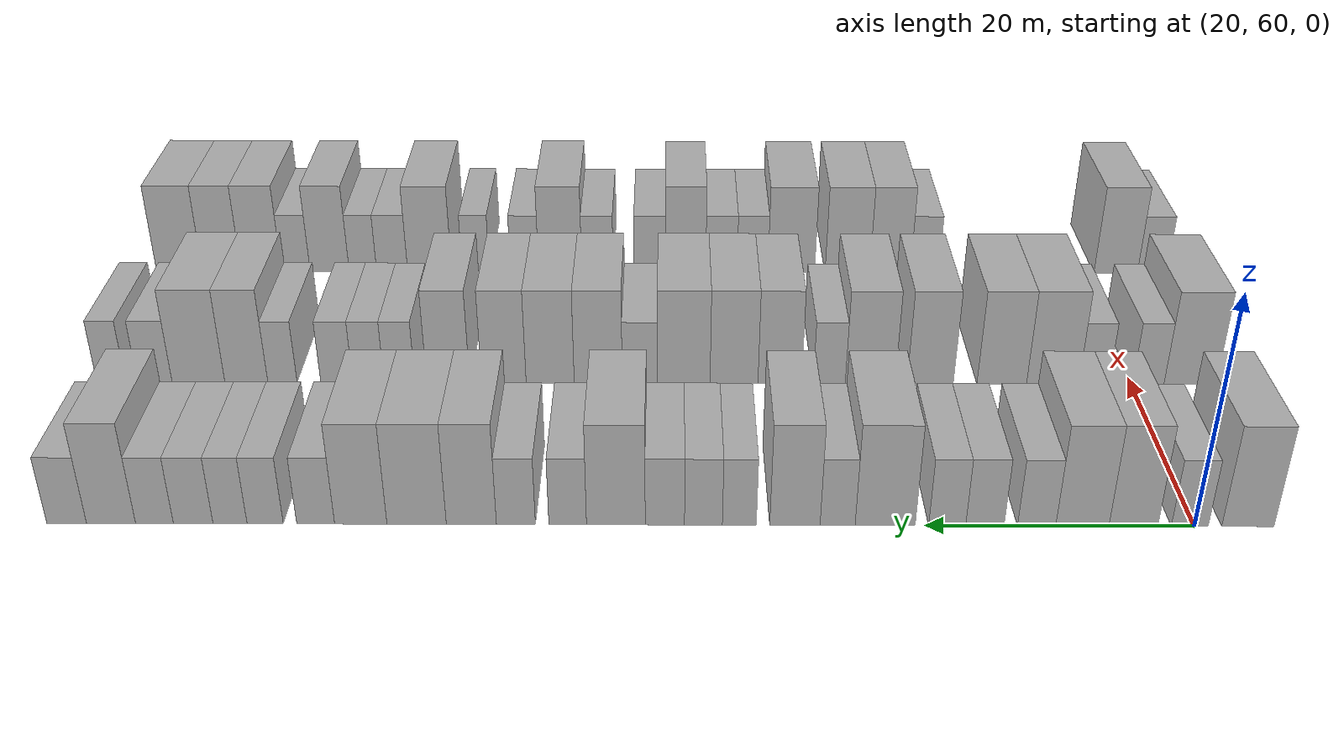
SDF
<sdf version="1.6">
 <world name="default">
  <model name="building_71">
   <static>1</static>
   <pose>25.0000 56.0857 0 0.000000 0.000000 0.000000</pose>
   <link name="link">
    <pose>0 0 4.50 0 0 0</pose>
    <collision name="collision"><geometry><box><size>10.0000 3.8599 9.0000</size></box></geometry></collision>
    <visual name="visual">
     <cast_shadows>0</cast_shadows>
     <geometry><box><size>10.0000 3.8599 9.0000</size></box></geometry>
     <material>
      <script>
       <uri>model://HANNAS_wall/materials/scripts</uri>
       <uri>model://HANNAS_wall/materials/textures</uri>
       <name>vrc/HANNAS_wall</name>
      </script>
     </material>
    </visual>
   </link>
  </model>
  <model name="building_72">
   <static>1</static>
   <pose>25.0000 60.3804 0 0.000000 0.000000 0.000000</pose>
   <link name="link">
    <pose>0 0 3.00 0 0 0</pose>
    <collision name="collision"><geometry><box><size>10.0000 2.7295 6.0000</size></box></geometry></collision>
    <visual name="visual">
     <cast_shadows>0</cast_shadows>
     <geometry><box><size>10.0000 2.7295 6.0000</size></box></geometry>
     <material>
      <script>
       <uri>model://HANNAS_wall/materials/scripts</uri>
       <uri>model://HANNAS_wall/materials/textures</uri>
       <name>vrc/HANNAS_wall</name>
      </script>
     </material>
    </visual>
   </link>
  </model>
  <model name="building_73">
   <static>1</static>
   <pose>25.0000 64.5520 0 0.000000 0.000000 0.000000</pose>
   <link name="link">
    <pose>0 0 4.50 0 0 0</pose>
    <collision name="collision"><geometry><box><size>10.0000 3.6137 9.0000</size></box></geometry></collision>
    <visual name="visual">
     <cast_shadows>0</cast_shadows>
     <geometry><box><size>10.0000 3.6137 9.0000</size></box></geometry>
     <material>
      <script>
       <uri>model://HANNAS_wall/materials/scripts</uri>
       <uri>model://HANNAS_wall/materials/textures</uri>
       <name>vrc/HANNAS_wall</name>
      </script>
     </material>
    </visual>
   </link>
  </model>
  <model name="building_74">
   <static>1</static>
   <pose>25.0000 68.3248 0 0.000000 0.000000 0.000000</pose>
   <link name="link">
    <pose>0 0 4.50 0 0 0</pose>
    <collision name="collision"><geometry><box><size>10.0000 3.9318 9.0000</size></box></geometry></collision>
    <visual name="visual">
     <cast_shadows>0</cast_shadows>
     <geometry><box><size>10.0000 3.9318 9.0000</size></box></geometry>
     <material>
      <script>
       <uri>model://HANNAS_wall/materials/scripts</uri>
       <uri>model://HANNAS_wall/materials/textures</uri>
       <name>vrc/HANNAS_wall</name>
      </script>
     </material>
    </visual>
   </link>
  </model>
  <model name="building_75">
   <static>1</static>
   <pose>25.0000 71.7041 0 0.000000 0.000000 0.000000</pose>
   <link name="link">
    <pose>0 0 3.00 0 0 0</pose>
    <collision name="collision"><geometry><box><size>10.0000 2.8268 6.0000</size></box></geometry></collision>
    <visual name="visual">
     <cast_shadows>0</cast_shadows>
     <geometry><box><size>10.0000 2.8268 6.0000</size></box></geometry>
     <material>
      <script>
       <uri>model://HANNAS_wall/materials/scripts</uri>
       <uri>model://HANNAS_wall/materials/textures</uri>
       <name>vrc/HANNAS_wall</name>
      </script>
     </material>
    </visual>
   </link>
  </model>
  <model name="building_76">
   <static>1</static>
   <pose>25.0000 75.5362 0 0.000000 0.000000 0.000000</pose>
   <link name="link">
    <pose>0 0 3.00 0 0 0</pose>
    <collision name="collision"><geometry><box><size>10.0000 2.8375 6.0000</size></box></geometry></collision>
    <visual name="visual">
     <cast_shadows>0</cast_shadows>
     <geometry><box><size>10.0000 2.8375 6.0000</size></box></geometry>
     <material>
      <script>
       <uri>model://HANNAS_wall/materials/scripts</uri>
       <uri>model://HANNAS_wall/materials/textures</uri>
       <name>vrc/HANNAS_wall</name>
      </script>
     </material>
    </visual>
   </link>
  </model>
  <model name="building_77">
   <static>1</static>
   <pose>25.0000 78.3225 0 0.000000 0.000000 0.000000</pose>
   <link name="link">
    <pose>0 0 3.00 0 0 0</pose>
    <collision name="collision"><geometry><box><size>10.0000 2.7351 6.0000</size></box></geometry></collision>
    <visual name="visual">
     <cast_shadows>0</cast_shadows>
     <geometry><box><size>10.0000 2.7351 6.0000</size></box></geometry>
     <material>
      <script>
       <uri>model://HANNAS_wall/materials/scripts</uri>
       <uri>model://HANNAS_wall/materials/textures</uri>
       <name>vrc/HANNAS_wall</name>
      </script>
     </material>
    </visual>
   </link>
  </model>
  <model name="building_78">
   <static>1</static>
   <pose>25.0000 82.9114 0 0.000000 0.000000 0.000000</pose>
   <link name="link">
    <pose>0 0 4.50 0 0 0</pose>
    <collision name="collision"><geometry><box><size>10.0000 4.4426 9.0000</size></box></geometry></collision>
    <visual name="visual">
     <cast_shadows>0</cast_shadows>
     <geometry><box><size>10.0000 4.4426 9.0000</size></box></geometry>
     <material>
      <script>
       <uri>model://HANNAS_wall/materials/scripts</uri>
       <uri>model://HANNAS_wall/materials/textures</uri>
       <name>vrc/HANNAS_wall</name>
      </script>
     </material>
    </visual>
   </link>
  </model>
  <model name="building_79">
   <static>1</static>
   <pose>25.0000 86.4302 0 0.000000 0.000000 0.000000</pose>
   <link name="link">
    <pose>0 0 3.00 0 0 0</pose>
    <collision name="collision"><geometry><box><size>10.0000 2.5951 6.0000</size></box></geometry></collision>
    <visual name="visual">
     <cast_shadows>0</cast_shadows>
     <geometry><box><size>10.0000 2.5951 6.0000</size></box></geometry>
     <material>
      <script>
       <uri>model://HANNAS_wall/materials/scripts</uri>
       <uri>model://HANNAS_wall/materials/textures</uri>
       <name>vrc/HANNAS_wall</name>
      </script>
     </material>
    </visual>
   </link>
  </model>
  <model name="building_80">
   <static>1</static>
   <pose>25.0000 89.5902 0 0.000000 0.000000 0.000000</pose>
   <link name="link">
    <pose>0 0 4.50 0 0 0</pose>
    <collision name="collision"><geometry><box><size>10.0000 3.7249 9.0000</size></box></geometry></collision>
    <visual name="visual">
     <cast_shadows>0</cast_shadows>
     <geometry><box><size>10.0000 3.7249 9.0000</size></box></geometry>
     <material>
      <script>
       <uri>model://HANNAS_wall/materials/scripts</uri>
       <uri>model://HANNAS_wall/materials/textures</uri>
       <name>vrc/HANNAS_wall</name>
      </script>
     </material>
    </visual>
   </link>
  </model>
  <model name="building_81">
   <static>1</static>
   <pose>25.0000 93.7089 0 0.000000 0.000000 0.000000</pose>
   <link name="link">
    <pose>0 0 3.00 0 0 0</pose>
    <collision name="collision"><geometry><box><size>10.0000 2.5125 6.0000</size></box></geometry></collision>
    <visual name="visual">
     <cast_shadows>0</cast_shadows>
     <geometry><box><size>10.0000 2.5125 6.0000</size></box></geometry>
     <material>
      <script>
       <uri>model://HANNAS_wall/materials/scripts</uri>
       <uri>model://HANNAS_wall/materials/textures</uri>
       <name>vrc/HANNAS_wall</name>
      </script>
     </material>
    </visual>
   </link>
  </model>
  <model name="building_82">
   <static>1</static>
   <pose>25.0000 96.3669 0 0.000000 0.000000 0.000000</pose>
   <link name="link">
    <pose>0 0 3.00 0 0 0</pose>
    <collision name="collision"><geometry><box><size>10.0000 2.8036 6.0000</size></box></geometry></collision>
    <visual name="visual">
     <cast_shadows>0</cast_shadows>
     <geometry><box><size>10.0000 2.8036 6.0000</size></box></geometry>
     <material>
      <script>
       <uri>model://HANNAS_wall/materials/scripts</uri>
       <uri>model://HANNAS_wall/materials/textures</uri>
       <name>vrc/HANNAS_wall</name>
      </script>
     </material>
    </visual>
   </link>
  </model>
  <model name="building_83">
   <static>1</static>
   <pose>25.0000 99.2216 0 0.000000 0.000000 0.000000</pose>
   <link name="link">
    <pose>0 0 3.00 0 0 0</pose>
    <collision name="collision"><geometry><box><size>10.0000 2.9058 6.0000</size></box></geometry></collision>
    <visual name="visual">
     <cast_shadows>0</cast_shadows>
     <geometry><box><size>10.0000 2.9058 6.0000</size></box></geometry>
     <material>
      <script>
       <uri>model://HANNAS_wall/materials/scripts</uri>
       <uri>model://HANNAS_wall/materials/textures</uri>
       <name>vrc/HANNAS_wall</name>
      </script>
     </material>
    </visual>
   </link>
  </model>
  <model name="building_84">
   <static>1</static>
   <pose>25.0000 102.8513 0 0.000000 0.000000 0.000000</pose>
   <link name="link">
    <pose>0 0 4.50 0 0 0</pose>
    <collision name="collision"><geometry><box><size>10.0000 4.3535 9.0000</size></box></geometry></collision>
    <visual name="visual">
     <cast_shadows>0</cast_shadows>
     <geometry><box><size>10.0000 4.3535 9.0000</size></box></geometry>
     <material>
      <script>
       <uri>model://HANNAS_wall/materials/scripts</uri>
       <uri>model://HANNAS_wall/materials/textures</uri>
       <name>vrc/HANNAS_wall</name>
      </script>
     </material>
    </visual>
   </link>
  </model>
  <model name="building_85">
   <static>1</static>
   <pose>25.0000 106.4211 0 0.000000 0.000000 0.000000</pose>
   <link name="link">
    <pose>0 0 3.00 0 0 0</pose>
    <collision name="collision"><geometry><box><size>10.0000 2.7861 6.0000</size></box></geometry></collision>
    <visual name="visual">
     <cast_shadows>0</cast_shadows>
     <geometry><box><size>10.0000 2.7861 6.0000</size></box></geometry>
     <material>
      <script>
       <uri>model://HANNAS_wall/materials/scripts</uri>
       <uri>model://HANNAS_wall/materials/textures</uri>
       <name>vrc/HANNAS_wall</name>
      </script>
     </material>
    </visual>
   </link>
  </model>
  <model name="building_86">
   <static>1</static>
   <pose>25.0000 110.2580 0 0.000000 0.000000 0.000000</pose>
   <link name="link">
    <pose>0 0 3.00 0 0 0</pose>
    <collision name="collision"><geometry><box><size>10.0000 2.8877 6.0000</size></box></geometry></collision>
    <visual name="visual">
     <cast_shadows>0</cast_shadows>
     <geometry><box><size>10.0000 2.8877 6.0000</size></box></geometry>
     <material>
      <script>
       <uri>model://HANNAS_wall/materials/scripts</uri>
       <uri>model://HANNAS_wall/materials/textures</uri>
       <name>vrc/HANNAS_wall</name>
      </script>
     </material>
    </visual>
   </link>
  </model>
  <model name="building_87">
   <static>1</static>
   <pose>25.0000 113.5597 0 0.000000 0.000000 0.000000</pose>
   <link name="link">
    <pose>0 0 4.50 0 0 0</pose>
    <collision name="collision"><geometry><box><size>10.0000 3.7157 9.0000</size></box></geometry></collision>
    <visual name="visual">
     <cast_shadows>0</cast_shadows>
     <geometry><box><size>10.0000 3.7157 9.0000</size></box></geometry>
     <material>
      <script>
       <uri>model://HANNAS_wall/materials/scripts</uri>
       <uri>model://HANNAS_wall/materials/textures</uri>
       <name>vrc/HANNAS_wall</name>
      </script>
     </material>
    </visual>
   </link>
  </model>
  <model name="building_88">
   <static>1</static>
   <pose>25.0000 117.6189 0 0.000000 0.000000 0.000000</pose>
   <link name="link">
    <pose>0 0 4.50 0 0 0</pose>
    <collision name="collision"><geometry><box><size>10.0000 4.4026 9.0000</size></box></geometry></collision>
    <visual name="visual">
     <cast_shadows>0</cast_shadows>
     <geometry><box><size>10.0000 4.4026 9.0000</size></box></geometry>
     <material>
      <script>
       <uri>model://HANNAS_wall/materials/scripts</uri>
       <uri>model://HANNAS_wall/materials/textures</uri>
       <name>vrc/HANNAS_wall</name>
      </script>
     </material>
    </visual>
   </link>
  </model>
  <model name="building_89">
   <static>1</static>
   <pose>25.0000 121.7616 0 0.000000 0.000000 0.000000</pose>
   <link name="link">
    <pose>0 0 4.50 0 0 0</pose>
    <collision name="collision"><geometry><box><size>10.0000 3.8828 9.0000</size></box></geometry></collision>
    <visual name="visual">
     <cast_shadows>0</cast_shadows>
     <geometry><box><size>10.0000 3.8828 9.0000</size></box></geometry>
     <material>
      <script>
       <uri>model://HANNAS_wall/materials/scripts</uri>
       <uri>model://HANNAS_wall/materials/textures</uri>
       <name>vrc/HANNAS_wall</name>
      </script>
     </material>
    </visual>
   </link>
  </model>
  <model name="building_90">
   <static>1</static>
   <pose>25.0000 125.1081 0 0.000000 0.000000 0.000000</pose>
   <link name="link">
    <pose>0 0 3.00 0 0 0</pose>
    <collision name="collision"><geometry><box><size>10.0000 2.8102 6.0000</size></box></geometry></collision>
    <visual name="visual">
     <cast_shadows>0</cast_shadows>
     <geometry><box><size>10.0000 2.8102 6.0000</size></box></geometry>
     <material>
      <script>
       <uri>model://HANNAS_wall/materials/scripts</uri>
       <uri>model://HANNAS_wall/materials/textures</uri>
       <name>vrc/HANNAS_wall</name>
      </script>
     </material>
    </visual>
   </link>
  </model>
  <model name="building_91">
   <static>1</static>
   <pose>25.0000 128.8567 0 0.000000 0.000000 0.000000</pose>
   <link name="link">
    <pose>0 0 3.00 0 0 0</pose>
    <collision name="collision"><geometry><box><size>10.0000 2.6869 6.0000</size></box></geometry></collision>
    <visual name="visual">
     <cast_shadows>0</cast_shadows>
     <geometry><box><size>10.0000 2.6869 6.0000</size></box></geometry>
     <material>
      <script>
       <uri>model://HANNAS_wall/materials/scripts</uri>
       <uri>model://HANNAS_wall/materials/textures</uri>
       <name>vrc/HANNAS_wall</name>
      </script>
     </material>
    </visual>
   </link>
  </model>
  <model name="building_92">
   <static>1</static>
   <pose>25.0000 131.4658 0 0.000000 0.000000 0.000000</pose>
   <link name="link">
    <pose>0 0 3.00 0 0 0</pose>
    <collision name="collision"><geometry><box><size>10.0000 2.5313 6.0000</size></box></geometry></collision>
    <visual name="visual">
     <cast_shadows>0</cast_shadows>
     <geometry><box><size>10.0000 2.5313 6.0000</size></box></geometry>
     <material>
      <script>
       <uri>model://HANNAS_wall/materials/scripts</uri>
       <uri>model://HANNAS_wall/materials/textures</uri>
       <name>vrc/HANNAS_wall</name>
      </script>
     </material>
    </visual>
   </link>
  </model>
  <model name="building_93">
   <static>1</static>
   <pose>25.0000 134.2010 0 0.000000 0.000000 0.000000</pose>
   <link name="link">
    <pose>0 0 3.00 0 0 0</pose>
    <collision name="collision"><geometry><box><size>10.0000 2.9391 6.0000</size></box></geometry></collision>
    <visual name="visual">
     <cast_shadows>0</cast_shadows>
     <geometry><box><size>10.0000 2.9391 6.0000</size></box></geometry>
     <material>
      <script>
       <uri>model://HANNAS_wall/materials/scripts</uri>
       <uri>model://HANNAS_wall/materials/textures</uri>
       <name>vrc/HANNAS_wall</name>
      </script>
     </material>
    </visual>
   </link>
  </model>
  <model name="building_94">
   <static>1</static>
   <pose>25.0000 137.0754 0 0.000000 0.000000 0.000000</pose>
   <link name="link">
    <pose>0 0 3.00 0 0 0</pose>
    <collision name="collision"><geometry><box><size>10.0000 2.8098 6.0000</size></box></geometry></collision>
    <visual name="visual">
     <cast_shadows>0</cast_shadows>
     <geometry><box><size>10.0000 2.8098 6.0000</size></box></geometry>
     <material>
      <script>
       <uri>model://HANNAS_wall/materials/scripts</uri>
       <uri>model://HANNAS_wall/materials/textures</uri>
       <name>vrc/HANNAS_wall</name>
      </script>
     </material>
    </visual>
   </link>
  </model>
  <model name="building_95">
   <static>1</static>
   <pose>25.0000 140.3036 0 0.000000 0.000000 0.000000</pose>
   <link name="link">
    <pose>0 0 4.50 0 0 0</pose>
    <collision name="collision"><geometry><box><size>10.0000 3.6466 9.0000</size></box></geometry></collision>
    <visual name="visual">
     <cast_shadows>0</cast_shadows>
     <geometry><box><size>10.0000 3.6466 9.0000</size></box></geometry>
     <material>
      <script>
       <uri>model://HANNAS_wall/materials/scripts</uri>
       <uri>model://HANNAS_wall/materials/textures</uri>
       <name>vrc/HANNAS_wall</name>
      </script>
     </material>
    </visual>
   </link>
  </model>
  <model name="building_96">
   <static>1</static>
   <pose>25.0000 143.5985 0 0.000000 0.000000 0.000000</pose>
   <link name="link">
    <pose>0 0 3.00 0 0 0</pose>
    <collision name="collision"><geometry><box><size>10.0000 2.9433 6.0000</size></box></geometry></collision>
    <visual name="visual">
     <cast_shadows>0</cast_shadows>
     <geometry><box><size>10.0000 2.9433 6.0000</size></box></geometry>
     <material>
      <script>
       <uri>model://HANNAS_wall/materials/scripts</uri>
       <uri>model://HANNAS_wall/materials/textures</uri>
       <name>vrc/HANNAS_wall</name>
      </script>
     </material>
    </visual>
   </link>
  </model>
  <model name="building_194">
   <static>1</static>
   <pose>44.0000 55.0228 0 0.000000 0.000000 0.000000</pose>
   <link name="link">
    <pose>0 0 4.50 0 0 0</pose>
    <collision name="collision"><geometry><box><size>10.0000 4.4016 9.0000</size></box></geometry></collision>
    <visual name="visual">
     <cast_shadows>0</cast_shadows>
     <geometry><box><size>10.0000 4.4016 9.0000</size></box></geometry>
     <material>
      <script>
       <uri>model://HANNAS_wall/materials/scripts</uri>
       <uri>model://HANNAS_wall/materials/textures</uri>
       <name>vrc/HANNAS_wall</name>
      </script>
     </material>
    </visual>
   </link>
  </model>
  <model name="building_195">
   <static>1</static>
   <pose>44.0000 58.5445 0 0.000000 0.000000 0.000000</pose>
   <link name="link">
    <pose>0 0 3.00 0 0 0</pose>
    <collision name="collision"><geometry><box><size>10.0000 2.6420 6.0000</size></box></geometry></collision>
    <visual name="visual">
     <cast_shadows>0</cast_shadows>
     <geometry><box><size>10.0000 2.6420 6.0000</size></box></geometry>
     <material>
      <script>
       <uri>model://HANNAS_wall/materials/scripts</uri>
       <uri>model://HANNAS_wall/materials/textures</uri>
       <name>vrc/HANNAS_wall</name>
      </script>
     </material>
    </visual>
   </link>
  </model>
  <model name="building_196">
   <static>1</static>
   <pose>44.0000 63.1316 0 0.000000 0.000000 0.000000</pose>
   <link name="link">
    <pose>0 0 3.00 0 0 0</pose>
    <collision name="collision"><geometry><box><size>10.0000 2.5323 6.0000</size></box></geometry></collision>
    <visual name="visual">
     <cast_shadows>0</cast_shadows>
     <geometry><box><size>10.0000 2.5323 6.0000</size></box></geometry>
     <material>
      <script>
       <uri>model://HANNAS_wall/materials/scripts</uri>
       <uri>model://HANNAS_wall/materials/textures</uri>
       <name>vrc/HANNAS_wall</name>
      </script>
     </material>
    </visual>
   </link>
  </model>
  <model name="building_197">
   <static>1</static>
   <pose>44.0000 66.5945 0 0.000000 0.000000 0.000000</pose>
   <link name="link">
    <pose>0 0 4.50 0 0 0</pose>
    <collision name="collision"><geometry><box><size>10.0000 4.3934 9.0000</size></box></geometry></collision>
    <visual name="visual">
     <cast_shadows>0</cast_shadows>
     <geometry><box><size>10.0000 4.3934 9.0000</size></box></geometry>
     <material>
      <script>
       <uri>model://HANNAS_wall/materials/scripts</uri>
       <uri>model://HANNAS_wall/materials/textures</uri>
       <name>vrc/HANNAS_wall</name>
      </script>
     </material>
    </visual>
   </link>
  </model>
  <model name="building_198">
   <static>1</static>
   <pose>44.0000 70.8788 0 0.000000 0.000000 0.000000</pose>
   <link name="link">
    <pose>0 0 4.50 0 0 0</pose>
    <collision name="collision"><geometry><box><size>10.0000 4.1754 9.0000</size></box></geometry></collision>
    <visual name="visual">
     <cast_shadows>0</cast_shadows>
     <geometry><box><size>10.0000 4.1754 9.0000</size></box></geometry>
     <material>
      <script>
       <uri>model://HANNAS_wall/materials/scripts</uri>
       <uri>model://HANNAS_wall/materials/textures</uri>
       <name>vrc/HANNAS_wall</name>
      </script>
     </material>
    </visual>
   </link>
  </model>
  <model name="building_199">
   <static>1</static>
   <pose>44.0000 76.9136 0 0.000000 0.000000 0.000000</pose>
   <link name="link">
    <pose>0 0 4.50 0 0 0</pose>
    <collision name="collision"><geometry><box><size>10.0000 3.8942 9.0000</size></box></geometry></collision>
    <visual name="visual">
     <cast_shadows>0</cast_shadows>
     <geometry><box><size>10.0000 3.8942 9.0000</size></box></geometry>
     <material>
      <script>
       <uri>model://HANNAS_wall/materials/scripts</uri>
       <uri>model://HANNAS_wall/materials/textures</uri>
       <name>vrc/HANNAS_wall</name>
      </script>
     </material>
    </visual>
   </link>
  </model>
  <model name="building_200">
   <static>1</static>
   <pose>44.0000 81.9629 0 0.000000 0.000000 0.000000</pose>
   <link name="link">
    <pose>0 0 4.50 0 0 0</pose>
    <collision name="collision"><geometry><box><size>10.0000 4.2044 9.0000</size></box></geometry></collision>
    <visual name="visual">
     <cast_shadows>0</cast_shadows>
     <geometry><box><size>10.0000 4.2044 9.0000</size></box></geometry>
     <material>
      <script>
       <uri>model://HANNAS_wall/materials/scripts</uri>
       <uri>model://HANNAS_wall/materials/textures</uri>
       <name>vrc/HANNAS_wall</name>
      </script>
     </material>
    </visual>
   </link>
  </model>
  <model name="building_201">
   <static>1</static>
   <pose>44.0000 85.4098 0 0.000000 0.000000 0.000000</pose>
   <link name="link">
    <pose>0 0 3.00 0 0 0</pose>
    <collision name="collision"><geometry><box><size>10.0000 2.6894 6.0000</size></box></geometry></collision>
    <visual name="visual">
     <cast_shadows>0</cast_shadows>
     <geometry><box><size>10.0000 2.6894 6.0000</size></box></geometry>
     <material>
      <script>
       <uri>model://HANNAS_wall/materials/scripts</uri>
       <uri>model://HANNAS_wall/materials/textures</uri>
       <name>vrc/HANNAS_wall</name>
      </script>
     </material>
    </visual>
   </link>
  </model>
  <model name="building_202">
   <static>1</static>
   <pose>44.0000 89.5886 0 0.000000 0.000000 0.000000</pose>
   <link name="link">
    <pose>0 0 4.50 0 0 0</pose>
    <collision name="collision"><geometry><box><size>10.0000 3.6682 9.0000</size></box></geometry></collision>
    <visual name="visual">
     <cast_shadows>0</cast_shadows>
     <geometry><box><size>10.0000 3.6682 9.0000</size></box></geometry>
     <material>
      <script>
       <uri>model://HANNAS_wall/materials/scripts</uri>
       <uri>model://HANNAS_wall/materials/textures</uri>
       <name>vrc/HANNAS_wall</name>
      </script>
     </material>
    </visual>
   </link>
  </model>
  <model name="building_203">
   <static>1</static>
   <pose>44.0000 93.4413 0 0.000000 0.000000 0.000000</pose>
   <link name="link">
    <pose>0 0 4.50 0 0 0</pose>
    <collision name="collision"><geometry><box><size>10.0000 4.0372 9.0000</size></box></geometry></collision>
    <visual name="visual">
     <cast_shadows>0</cast_shadows>
     <geometry><box><size>10.0000 4.0372 9.0000</size></box></geometry>
     <material>
      <script>
       <uri>model://HANNAS_wall/materials/scripts</uri>
       <uri>model://HANNAS_wall/materials/textures</uri>
       <name>vrc/HANNAS_wall</name>
      </script>
     </material>
    </visual>
   </link>
  </model>
  <model name="building_204">
   <static>1</static>
   <pose>44.0000 97.6780 0 0.000000 0.000000 0.000000</pose>
   <link name="link">
    <pose>0 0 4.50 0 0 0</pose>
    <collision name="collision"><geometry><box><size>10.0000 4.4361 9.0000</size></box></geometry></collision>
    <visual name="visual">
     <cast_shadows>0</cast_shadows>
     <geometry><box><size>10.0000 4.4361 9.0000</size></box></geometry>
     <material>
      <script>
       <uri>model://HANNAS_wall/materials/scripts</uri>
       <uri>model://HANNAS_wall/materials/textures</uri>
       <name>vrc/HANNAS_wall</name>
      </script>
     </material>
    </visual>
   </link>
  </model>
  <model name="building_205">
   <static>1</static>
   <pose>44.0000 101.3795 0 0.000000 0.000000 0.000000</pose>
   <link name="link">
    <pose>0 0 3.00 0 0 0</pose>
    <collision name="collision"><geometry><box><size>10.0000 2.9668 6.0000</size></box></geometry></collision>
    <visual name="visual">
     <cast_shadows>0</cast_shadows>
     <geometry><box><size>10.0000 2.9668 6.0000</size></box></geometry>
     <material>
      <script>
       <uri>model://HANNAS_wall/materials/scripts</uri>
       <uri>model://HANNAS_wall/materials/textures</uri>
       <name>vrc/HANNAS_wall</name>
      </script>
     </material>
    </visual>
   </link>
  </model>
  <model name="building_206">
   <static>1</static>
   <pose>44.0000 104.8877 0 0.000000 0.000000 0.000000</pose>
   <link name="link">
    <pose>0 0 4.50 0 0 0</pose>
    <collision name="collision"><geometry><box><size>10.0000 4.0497 9.0000</size></box></geometry></collision>
    <visual name="visual">
     <cast_shadows>0</cast_shadows>
     <geometry><box><size>10.0000 4.0497 9.0000</size></box></geometry>
     <material>
      <script>
       <uri>model://HANNAS_wall/materials/scripts</uri>
       <uri>model://HANNAS_wall/materials/textures</uri>
       <name>vrc/HANNAS_wall</name>
      </script>
     </material>
    </visual>
   </link>
  </model>
  <model name="building_207">
   <static>1</static>
   <pose>44.0000 108.9412 0 0.000000 0.000000 0.000000</pose>
   <link name="link">
    <pose>0 0 4.50 0 0 0</pose>
    <collision name="collision"><geometry><box><size>10.0000 4.0572 9.0000</size></box></geometry></collision>
    <visual name="visual">
     <cast_shadows>0</cast_shadows>
     <geometry><box><size>10.0000 4.0572 9.0000</size></box></geometry>
     <material>
      <script>
       <uri>model://HANNAS_wall/materials/scripts</uri>
       <uri>model://HANNAS_wall/materials/textures</uri>
       <name>vrc/HANNAS_wall</name>
      </script>
     </material>
    </visual>
   </link>
  </model>
  <model name="building_208">
   <static>1</static>
   <pose>44.0000 112.8501 0 0.000000 0.000000 0.000000</pose>
   <link name="link">
    <pose>0 0 4.50 0 0 0</pose>
    <collision name="collision"><geometry><box><size>10.0000 3.7606 9.0000</size></box></geometry></collision>
    <visual name="visual">
     <cast_shadows>0</cast_shadows>
     <geometry><box><size>10.0000 3.7606 9.0000</size></box></geometry>
     <material>
      <script>
       <uri>model://HANNAS_wall/materials/scripts</uri>
       <uri>model://HANNAS_wall/materials/textures</uri>
       <name>vrc/HANNAS_wall</name>
      </script>
     </material>
    </visual>
   </link>
  </model>
  <model name="building_209">
   <static>1</static>
   <pose>44.0000 117.5459 0 0.000000 0.000000 0.000000</pose>
   <link name="link">
    <pose>0 0 4.50 0 0 0</pose>
    <collision name="collision"><geometry><box><size>10.0000 3.6310 9.0000</size></box></geometry></collision>
    <visual name="visual">
     <cast_shadows>0</cast_shadows>
     <geometry><box><size>10.0000 3.6310 9.0000</size></box></geometry>
     <material>
      <script>
       <uri>model://HANNAS_wall/materials/scripts</uri>
       <uri>model://HANNAS_wall/materials/textures</uri>
       <name>vrc/HANNAS_wall</name>
      </script>
     </material>
    </visual>
   </link>
  </model>
  <model name="building_210">
   <static>1</static>
   <pose>44.0000 121.6631 0 0.000000 0.000000 0.000000</pose>
   <link name="link">
    <pose>0 0 3.00 0 0 0</pose>
    <collision name="collision"><geometry><box><size>10.0000 2.6033 6.0000</size></box></geometry></collision>
    <visual name="visual">
     <cast_shadows>0</cast_shadows>
     <geometry><box><size>10.0000 2.6033 6.0000</size></box></geometry>
     <material>
      <script>
       <uri>model://HANNAS_wall/materials/scripts</uri>
       <uri>model://HANNAS_wall/materials/textures</uri>
       <name>vrc/HANNAS_wall</name>
      </script>
     </material>
    </visual>
   </link>
  </model>
  <model name="building_211">
   <static>1</static>
   <pose>44.0000 124.2877 0 0.000000 0.000000 0.000000</pose>
   <link name="link">
    <pose>0 0 3.00 0 0 0</pose>
    <collision name="collision"><geometry><box><size>10.0000 2.6461 6.0000</size></box></geometry></collision>
    <visual name="visual">
     <cast_shadows>0</cast_shadows>
     <geometry><box><size>10.0000 2.6461 6.0000</size></box></geometry>
     <material>
      <script>
       <uri>model://HANNAS_wall/materials/scripts</uri>
       <uri>model://HANNAS_wall/materials/textures</uri>
       <name>vrc/HANNAS_wall</name>
      </script>
     </material>
    </visual>
   </link>
  </model>
  <model name="building_212">
   <static>1</static>
   <pose>44.0000 126.9607 0 0.000000 0.000000 0.000000</pose>
   <link name="link">
    <pose>0 0 3.00 0 0 0</pose>
    <collision name="collision"><geometry><box><size>10.0000 2.6997 6.0000</size></box></geometry></collision>
    <visual name="visual">
     <cast_shadows>0</cast_shadows>
     <geometry><box><size>10.0000 2.6997 6.0000</size></box></geometry>
     <material>
      <script>
       <uri>model://HANNAS_wall/materials/scripts</uri>
       <uri>model://HANNAS_wall/materials/textures</uri>
       <name>vrc/HANNAS_wall</name>
      </script>
     </material>
    </visual>
   </link>
  </model>
  <model name="building_213">
   <static>1</static>
   <pose>44.0000 131.5496 0 0.000000 0.000000 0.000000</pose>
   <link name="link">
    <pose>0 0 3.00 0 0 0</pose>
    <collision name="collision"><geometry><box><size>10.0000 2.4781 6.0000</size></box></geometry></collision>
    <visual name="visual">
     <cast_shadows>0</cast_shadows>
     <geometry><box><size>10.0000 2.4781 6.0000</size></box></geometry>
     <material>
      <script>
       <uri>model://HANNAS_wall/materials/scripts</uri>
       <uri>model://HANNAS_wall/materials/textures</uri>
       <name>vrc/HANNAS_wall</name>
      </script>
     </material>
    </visual>
   </link>
  </model>
  <model name="building_214">
   <static>1</static>
   <pose>44.0000 134.6041 0 0.000000 0.000000 0.000000</pose>
   <link name="link">
    <pose>0 0 4.50 0 0 0</pose>
    <collision name="collision"><geometry><box><size>10.0000 3.6309 9.0000</size></box></geometry></collision>
    <visual name="visual">
     <cast_shadows>0</cast_shadows>
     <geometry><box><size>10.0000 3.6309 9.0000</size></box></geometry>
     <material>
      <script>
       <uri>model://HANNAS_wall/materials/scripts</uri>
       <uri>model://HANNAS_wall/materials/textures</uri>
       <name>vrc/HANNAS_wall</name>
      </script>
     </material>
    </visual>
   </link>
  </model>
  <model name="building_215">
   <static>1</static>
   <pose>44.0000 138.6508 0 0.000000 0.000000 0.000000</pose>
   <link name="link">
    <pose>0 0 4.50 0 0 0</pose>
    <collision name="collision"><geometry><box><size>10.0000 4.4624 9.0000</size></box></geometry></collision>
    <visual name="visual">
     <cast_shadows>0</cast_shadows>
     <geometry><box><size>10.0000 4.4624 9.0000</size></box></geometry>
     <material>
      <script>
       <uri>model://HANNAS_wall/materials/scripts</uri>
       <uri>model://HANNAS_wall/materials/textures</uri>
       <name>vrc/HANNAS_wall</name>
      </script>
     </material>
    </visual>
   </link>
  </model>
  <model name="building_216">
   <static>1</static>
   <pose>44.0000 142.3465 0 0.000000 0.000000 0.000000</pose>
   <link name="link">
    <pose>0 0 3.00 0 0 0</pose>
    <collision name="collision"><geometry><box><size>10.0000 2.9290 6.0000</size></box></geometry></collision>
    <visual name="visual">
     <cast_shadows>0</cast_shadows>
     <geometry><box><size>10.0000 2.9290 6.0000</size></box></geometry>
     <material>
      <script>
       <uri>model://HANNAS_wall/materials/scripts</uri>
       <uri>model://HANNAS_wall/materials/textures</uri>
       <name>vrc/HANNAS_wall</name>
      </script>
     </material>
    </visual>
   </link>
  </model>
  <model name="building_217">
   <static>1</static>
   <pose>44.0000 146.0322 0 0.000000 0.000000 0.000000</pose>
   <link name="link">
    <pose>0 0 3.00 0 0 0</pose>
    <collision name="collision"><geometry><box><size>10.0000 2.4426 6.0000</size></box></geometry></collision>
    <visual name="visual">
     <cast_shadows>0</cast_shadows>
     <geometry><box><size>10.0000 2.4426 6.0000</size></box></geometry>
     <material>
      <script>
       <uri>model://HANNAS_wall/materials/scripts</uri>
       <uri>model://HANNAS_wall/materials/textures</uri>
       <name>vrc/HANNAS_wall</name>
      </script>
     </material>
    </visual>
   </link>
  </model>
  <model name="building_312">
   <static>1</static>
   <pose>63.0000 53.2801 0 0.000000 0.000000 0.000000</pose>
   <link name="link">
    <pose>0 0 3.00 0 0 0</pose>
    <collision name="collision"><geometry><box><size>10.0000 2.7785 6.0000</size></box></geometry></collision>
    <visual name="visual">
     <cast_shadows>0</cast_shadows>
     <geometry><box><size>10.0000 2.7785 6.0000</size></box></geometry>
     <material>
      <script>
       <uri>model://HANNAS_wall/materials/scripts</uri>
       <uri>model://HANNAS_wall/materials/textures</uri>
       <name>vrc/HANNAS_wall</name>
      </script>
     </material>
    </visual>
   </link>
  </model>
  <model name="building_313">
   <static>1</static>
   <pose>63.0000 56.7168 0 0.000000 0.000000 0.000000</pose>
   <link name="link">
    <pose>0 0 4.50 0 0 0</pose>
    <collision name="collision"><geometry><box><size>10.0000 4.0948 9.0000</size></box></geometry></collision>
    <visual name="visual">
     <cast_shadows>0</cast_shadows>
     <geometry><box><size>10.0000 4.0948 9.0000</size></box></geometry>
     <material>
      <script>
       <uri>model://HANNAS_wall/materials/scripts</uri>
       <uri>model://HANNAS_wall/materials/textures</uri>
       <name>vrc/HANNAS_wall</name>
      </script>
     </material>
    </visual>
   </link>
  </model>
  <model name="building_314">
   <static>1</static>
   <pose>63.0000 74.7805 0 0.000000 0.000000 0.000000</pose>
   <link name="link">
    <pose>0 0 3.00 0 0 0</pose>
    <collision name="collision"><geometry><box><size>10.0000 2.6776 6.0000</size></box></geometry></collision>
    <visual name="visual">
     <cast_shadows>0</cast_shadows>
     <geometry><box><size>10.0000 2.6776 6.0000</size></box></geometry>
     <material>
      <script>
       <uri>model://HANNAS_wall/materials/scripts</uri>
       <uri>model://HANNAS_wall/materials/textures</uri>
       <name>vrc/HANNAS_wall</name>
      </script>
     </material>
    </visual>
   </link>
  </model>
  <model name="building_315">
   <static>1</static>
   <pose>63.0000 78.0383 0 0.000000 0.000000 0.000000</pose>
   <link name="link">
    <pose>0 0 4.50 0 0 0</pose>
    <collision name="collision"><geometry><box><size>10.0000 3.8381 9.0000</size></box></geometry></collision>
    <visual name="visual">
     <cast_shadows>0</cast_shadows>
     <geometry><box><size>10.0000 3.8381 9.0000</size></box></geometry>
     <material>
      <script>
       <uri>model://HANNAS_wall/materials/scripts</uri>
       <uri>model://HANNAS_wall/materials/textures</uri>
       <name>vrc/HANNAS_wall</name>
      </script>
     </material>
    </visual>
   </link>
  </model>
  <model name="building_316">
   <static>1</static>
   <pose>63.0000 82.0613 0 0.000000 0.000000 0.000000</pose>
   <link name="link">
    <pose>0 0 4.50 0 0 0</pose>
    <collision name="collision"><geometry><box><size>10.0000 4.2079 9.0000</size></box></geometry></collision>
    <visual name="visual">
     <cast_shadows>0</cast_shadows>
     <geometry><box><size>10.0000 4.2079 9.0000</size></box></geometry>
     <material>
      <script>
       <uri>model://HANNAS_wall/materials/scripts</uri>
       <uri>model://HANNAS_wall/materials/textures</uri>
       <name>vrc/HANNAS_wall</name>
      </script>
     </material>
    </visual>
   </link>
  </model>
  <model name="building_317">
   <static>1</static>
   <pose>63.0000 87.3723 0 0.000000 0.000000 0.000000</pose>
   <link name="link">
    <pose>0 0 4.50 0 0 0</pose>
    <collision name="collision"><geometry><box><size>10.0000 4.4140 9.0000</size></box></geometry></collision>
    <visual name="visual">
     <cast_shadows>0</cast_shadows>
     <geometry><box><size>10.0000 4.4140 9.0000</size></box></geometry>
     <material>
      <script>
       <uri>model://HANNAS_wall/materials/scripts</uri>
       <uri>model://HANNAS_wall/materials/textures</uri>
       <name>vrc/HANNAS_wall</name>
      </script>
     </material>
    </visual>
   </link>
  </model>
  <model name="building_318">
   <static>1</static>
   <pose>63.0000 91.0332 0 0.000000 0.000000 0.000000</pose>
   <link name="link">
    <pose>0 0 3.00 0 0 0</pose>
    <collision name="collision"><geometry><box><size>10.0000 2.9079 6.0000</size></box></geometry></collision>
    <visual name="visual">
     <cast_shadows>0</cast_shadows>
     <geometry><box><size>10.0000 2.9079 6.0000</size></box></geometry>
     <material>
      <script>
       <uri>model://HANNAS_wall/materials/scripts</uri>
       <uri>model://HANNAS_wall/materials/textures</uri>
       <name>vrc/HANNAS_wall</name>
      </script>
     </material>
    </visual>
   </link>
  </model>
  <model name="building_319">
   <static>1</static>
   <pose>63.0000 93.9700 0 0.000000 0.000000 0.000000</pose>
   <link name="link">
    <pose>0 0 3.00 0 0 0</pose>
    <collision name="collision"><geometry><box><size>10.0000 2.9656 6.0000</size></box></geometry></collision>
    <visual name="visual">
     <cast_shadows>0</cast_shadows>
     <geometry><box><size>10.0000 2.9656 6.0000</size></box></geometry>
     <material>
      <script>
       <uri>model://HANNAS_wall/materials/scripts</uri>
       <uri>model://HANNAS_wall/materials/textures</uri>
       <name>vrc/HANNAS_wall</name>
      </script>
     </material>
    </visual>
   </link>
  </model>
  <model name="building_320">
   <static>1</static>
   <pose>63.0000 97.3449 0 0.000000 0.000000 0.000000</pose>
   <link name="link">
    <pose>0 0 4.50 0 0 0</pose>
    <collision name="collision"><geometry><box><size>10.0000 3.7842 9.0000</size></box></geometry></collision>
    <visual name="visual">
     <cast_shadows>0</cast_shadows>
     <geometry><box><size>10.0000 3.7842 9.0000</size></box></geometry>
     <material>
      <script>
       <uri>model://HANNAS_wall/materials/scripts</uri>
       <uri>model://HANNAS_wall/materials/textures</uri>
       <name>vrc/HANNAS_wall</name>
      </script>
     </material>
    </visual>
   </link>
  </model>
  <model name="building_321">
   <static>1</static>
   <pose>63.0000 100.7247 0 0.000000 0.000000 0.000000</pose>
   <link name="link">
    <pose>0 0 3.00 0 0 0</pose>
    <collision name="collision"><geometry><box><size>10.0000 2.9755 6.0000</size></box></geometry></collision>
    <visual name="visual">
     <cast_shadows>0</cast_shadows>
     <geometry><box><size>10.0000 2.9755 6.0000</size></box></geometry>
     <material>
      <script>
       <uri>model://HANNAS_wall/materials/scripts</uri>
       <uri>model://HANNAS_wall/materials/textures</uri>
       <name>vrc/HANNAS_wall</name>
      </script>
     </material>
    </visual>
   </link>
  </model>
  <model name="building_322">
   <static>1</static>
   <pose>63.0000 105.6975 0 0.000000 0.000000 0.000000</pose>
   <link name="link">
    <pose>0 0 3.00 0 0 0</pose>
    <collision name="collision"><geometry><box><size>10.0000 2.9702 6.0000</size></box></geometry></collision>
    <visual name="visual">
     <cast_shadows>0</cast_shadows>
     <geometry><box><size>10.0000 2.9702 6.0000</size></box></geometry>
     <material>
      <script>
       <uri>model://HANNAS_wall/materials/scripts</uri>
       <uri>model://HANNAS_wall/materials/textures</uri>
       <name>vrc/HANNAS_wall</name>
      </script>
     </material>
    </visual>
   </link>
  </model>
  <model name="building_323">
   <static>1</static>
   <pose>63.0000 109.2203 0 0.000000 0.000000 0.000000</pose>
   <link name="link">
    <pose>0 0 4.50 0 0 0</pose>
    <collision name="collision"><geometry><box><size>10.0000 4.0753 9.0000</size></box></geometry></collision>
    <visual name="visual">
     <cast_shadows>0</cast_shadows>
     <geometry><box><size>10.0000 4.0753 9.0000</size></box></geometry>
     <material>
      <script>
       <uri>model://HANNAS_wall/materials/scripts</uri>
       <uri>model://HANNAS_wall/materials/textures</uri>
       <name>vrc/HANNAS_wall</name>
      </script>
     </material>
    </visual>
   </link>
  </model>
  <model name="building_324">
   <static>1</static>
   <pose>63.0000 112.5818 0 0.000000 0.000000 0.000000</pose>
   <link name="link">
    <pose>0 0 3.00 0 0 0</pose>
    <collision name="collision"><geometry><box><size>10.0000 2.6478 6.0000</size></box></geometry></collision>
    <visual name="visual">
     <cast_shadows>0</cast_shadows>
     <geometry><box><size>10.0000 2.6478 6.0000</size></box></geometry>
     <material>
      <script>
       <uri>model://HANNAS_wall/materials/scripts</uri>
       <uri>model://HANNAS_wall/materials/textures</uri>
       <name>vrc/HANNAS_wall</name>
      </script>
     </material>
    </visual>
   </link>
  </model>
  <model name="building_325">
   <static>1</static>
   <pose>63.0000 117.1944 0 0.000000 0.000000 0.000000</pose>
   <link name="link">
    <pose>0 0 3.00 0 0 0</pose>
    <collision name="collision"><geometry><box><size>10.0000 2.5774 6.0000</size></box></geometry></collision>
    <visual name="visual">
     <cast_shadows>0</cast_shadows>
     <geometry><box><size>10.0000 2.5774 6.0000</size></box></geometry>
     <material>
      <script>
       <uri>model://HANNAS_wall/materials/scripts</uri>
       <uri>model://HANNAS_wall/materials/textures</uri>
       <name>vrc/HANNAS_wall</name>
      </script>
     </material>
    </visual>
   </link>
  </model>
  <model name="building_326">
   <static>1</static>
   <pose>63.0000 121.5698 0 0.000000 0.000000 0.000000</pose>
   <link name="link">
    <pose>0 0 4.50 0 0 0</pose>
    <collision name="collision"><geometry><box><size>10.0000 4.1733 9.0000</size></box></geometry></collision>
    <visual name="visual">
     <cast_shadows>0</cast_shadows>
     <geometry><box><size>10.0000 4.1733 9.0000</size></box></geometry>
     <material>
      <script>
       <uri>model://HANNAS_wall/materials/scripts</uri>
       <uri>model://HANNAS_wall/materials/textures</uri>
       <name>vrc/HANNAS_wall</name>
      </script>
     </material>
    </visual>
   </link>
  </model>
  <model name="building_327">
   <static>1</static>
   <pose>63.0000 125.1259 0 0.000000 0.000000 0.000000</pose>
   <link name="link">
    <pose>0 0 3.00 0 0 0</pose>
    <collision name="collision"><geometry><box><size>10.0000 2.9389 6.0000</size></box></geometry></collision>
    <visual name="visual">
     <cast_shadows>0</cast_shadows>
     <geometry><box><size>10.0000 2.9389 6.0000</size></box></geometry>
     <material>
      <script>
       <uri>model://HANNAS_wall/materials/scripts</uri>
       <uri>model://HANNAS_wall/materials/textures</uri>
       <name>vrc/HANNAS_wall</name>
      </script>
     </material>
    </visual>
   </link>
  </model>
  <model name="building_328">
   <static>1</static>
   <pose>63.0000 127.8952 0 0.000000 0.000000 0.000000</pose>
   <link name="link">
    <pose>0 0 3.00 0 0 0</pose>
    <collision name="collision"><geometry><box><size>10.0000 2.5997 6.0000</size></box></geometry></collision>
    <visual name="visual">
     <cast_shadows>0</cast_shadows>
     <geometry><box><size>10.0000 2.5997 6.0000</size></box></geometry>
     <material>
      <script>
       <uri>model://HANNAS_wall/materials/scripts</uri>
       <uri>model://HANNAS_wall/materials/textures</uri>
       <name>vrc/HANNAS_wall</name>
      </script>
     </material>
    </visual>
   </link>
  </model>
  <model name="building_329">
   <static>1</static>
   <pose>63.0000 131.0451 0 0.000000 0.000000 0.000000</pose>
   <link name="link">
    <pose>0 0 4.50 0 0 0</pose>
    <collision name="collision"><geometry><box><size>10.0000 3.7002 9.0000</size></box></geometry></collision>
    <visual name="visual">
     <cast_shadows>0</cast_shadows>
     <geometry><box><size>10.0000 3.7002 9.0000</size></box></geometry>
     <material>
      <script>
       <uri>model://HANNAS_wall/materials/scripts</uri>
       <uri>model://HANNAS_wall/materials/textures</uri>
       <name>vrc/HANNAS_wall</name>
      </script>
     </material>
    </visual>
   </link>
  </model>
  <model name="building_330">
   <static>1</static>
   <pose>63.0000 134.2441 0 0.000000 0.000000 0.000000</pose>
   <link name="link">
    <pose>0 0 3.00 0 0 0</pose>
    <collision name="collision"><geometry><box><size>10.0000 2.6978 6.0000</size></box></geometry></collision>
    <visual name="visual">
     <cast_shadows>0</cast_shadows>
     <geometry><box><size>10.0000 2.6978 6.0000</size></box></geometry>
     <material>
      <script>
       <uri>model://HANNAS_wall/materials/scripts</uri>
       <uri>model://HANNAS_wall/materials/textures</uri>
       <name>vrc/HANNAS_wall</name>
      </script>
     </material>
    </visual>
   </link>
  </model>
  <model name="building_331">
   <static>1</static>
   <pose>63.0000 137.5156 0 0.000000 0.000000 0.000000</pose>
   <link name="link">
    <pose>0 0 4.50 0 0 0</pose>
    <collision name="collision"><geometry><box><size>10.0000 3.8452 9.0000</size></box></geometry></collision>
    <visual name="visual">
     <cast_shadows>0</cast_shadows>
     <geometry><box><size>10.0000 3.8452 9.0000</size></box></geometry>
     <material>
      <script>
       <uri>model://HANNAS_wall/materials/scripts</uri>
       <uri>model://HANNAS_wall/materials/textures</uri>
       <name>vrc/HANNAS_wall</name>
      </script>
     </material>
    </visual>
   </link>
  </model>
  <model name="building_332">
   <static>1</static>
   <pose>63.0000 141.2812 0 0.000000 0.000000 0.000000</pose>
   <link name="link">
    <pose>0 0 4.50 0 0 0</pose>
    <collision name="collision"><geometry><box><size>10.0000 3.6860 9.0000</size></box></geometry></collision>
    <visual name="visual">
     <cast_shadows>0</cast_shadows>
     <geometry><box><size>10.0000 3.6860 9.0000</size></box></geometry>
     <material>
      <script>
       <uri>model://HANNAS_wall/materials/scripts</uri>
       <uri>model://HANNAS_wall/materials/textures</uri>
       <name>vrc/HANNAS_wall</name>
      </script>
     </material>
    </visual>
   </link>
  </model>
  <model name="building_333">
   <static>1</static>
   <pose>63.0000 145.2894 0 0.000000 0.000000 0.000000</pose>
   <link name="link">
    <pose>0 0 4.50 0 0 0</pose>
    <collision name="collision"><geometry><box><size>10.0000 4.3303 9.0000</size></box></geometry></collision>
    <visual name="visual">
     <cast_shadows>0</cast_shadows>
     <geometry><box><size>10.0000 4.3303 9.0000</size></box></geometry>
     <material>
      <script>
       <uri>model://HANNAS_wall/materials/scripts</uri>
       <uri>model://HANNAS_wall/materials/textures</uri>
       <name>vrc/HANNAS_wall</name>
      </script>
     </material>
    </visual>
   </link>
  </model>
 </world>
</sdf>
